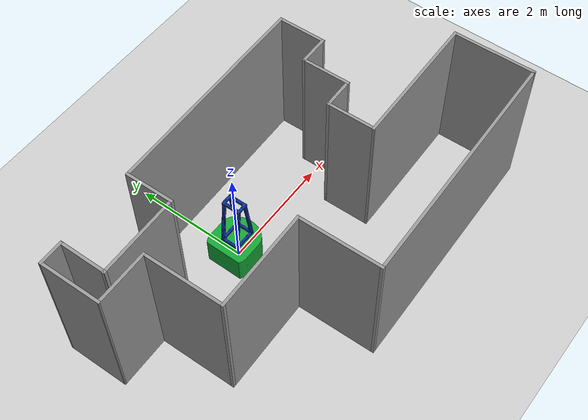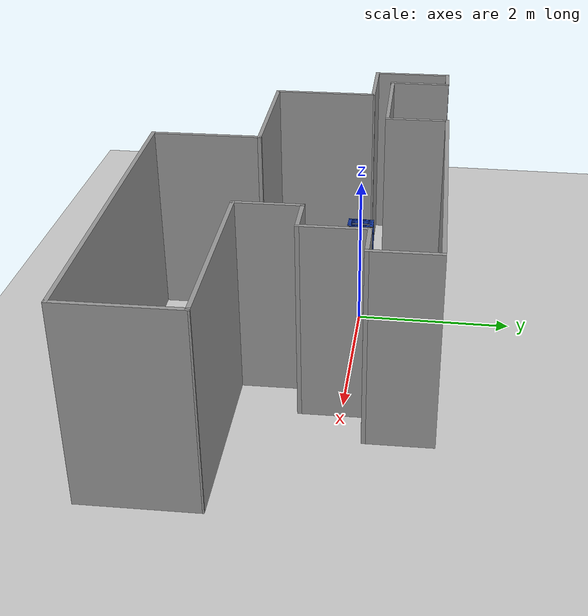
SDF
<sdf version="1.4">
 <world name="default">
  <light name="sun" type="directional">
   <pose>0 0 10 0 -0 0</pose>
   <diffuse>0.8 0.8 0.8 1</diffuse>
   <specular>0.2 0.2 0.2 1</specular>
   <attenuation>
    <range>1000</range>
    <constant>0.9</constant>
    <linear>0.01</linear>
    <quadratic>0.001</quadratic>
   </attenuation>
   <direction>-0.5 0.1 -0.9</direction>
  </light>
  <model name="ground_plane">
   <static>1</static>
   <link name="link">
    <collision name="collision">
     <geometry><plane><normal>0 0 1</normal><size>100 100</size></plane></geometry>
     <surface><friction><ode><mu>100</mu><mu2>50</mu2></ode></friction></surface>
    </collision>
    <visual name="visual">
     <cast_shadows>0</cast_shadows>
     <geometry><plane><normal>0 0 1</normal><size>100 100</size></plane></geometry>
     <material>
      <script><uri>file://media/materials/scripts/gazebo.material</uri><name>Gazebo/Grey</name></script>
     </material>
    </visual>
    <velocity_decay><linear>0</linear><angular>0</angular></velocity_decay>
   </link>
  </model>
  <physics type="ode">
   <max_step_size>0.001</max_step_size>
   <real_time_factor>1</real_time_factor>
   <real_time_update_rate>1000</real_time_update_rate>
   <gravity>0 0 -9.8</gravity>
  </physics>
  <scene><ambient>0.4 0.4 0.4 1</ambient><background>0.7 0.7 0.7 1</background><shadows>1</shadows></scene>
  <spherical_coordinates>
   <surface_model>EARTH_WGS84</surface_model>
   <latitude_deg>0</latitude_deg>
   <longitude_deg>0</longitude_deg>
   <elevation>0</elevation>
   <heading_deg>0</heading_deg>
  </spherical_coordinates>
  <model name="mild">
   <link name="base_link">
    <inertial>
     <mass>5.67</mass>
     <inertia><ixx>0.0</ixx><iyy>0.0</iyy><izz>0.0</izz><ixy>0</ixy><ixz>0</ixz><iyz>0</iyz></inertia>
    </inertial>
    <collision name="collision">
     <geometry><cylinder><radius>0.21</radius><length>0.485</length></cylinder></geometry>
    </collision>
    <collision name="castor_collision">
     <pose>-0.2 0 -0.12 0 -0 0</pose>
     <geometry><sphere><radius>0.04</radius></sphere></geometry>
     <surface><friction><ode><mu>0</mu><mu2>0</mu2><slip1>1</slip1><slip2>1</slip2></ode></friction></surface>
    </collision>
    <visual name="visual">
     <pose>0 0 -0.2 0 0 -1.5708</pose>
     <geometry><mesh><uri>model://mild/meshes/mild.dae</uri></mesh></geometry>
    </visual>
    <sensor name="laser" type="ray">
     <pose>0.22 0 -0.22 0 -0 0</pose>
     <visualize>1</visualize>
     <ray>
      <scan>
       <horizontal>
        <samples>180</samples>
        <resolution>1</resolution>
        <min_angle>-1.5708</min_angle>
        <max_angle>1.5708</max_angle>
       </horizontal>
      </scan>
      <range><min>0.08</min><max>10</max><resolution>0.01</resolution></range>
     </ray>
     <plugin name="laser_controller" filename="libgazebo_ros_laser.so">
      <gaussianNoise>0.005</gaussianNoise>
      <alwaysOn>1</alwaysOn>
      <updateRate>20</updateRate>
      <topicName>scan</topicName>
      <frameName>base_laser</frameName>
     </plugin>
     <update_rate>20</update_rate>
    </sensor>
    <velocity_decay><linear>0</linear><angular>0</angular></velocity_decay>
   </link>
   <pose>-0 -3e-06 0.2425 0 -0 0</pose>
   <static>0</static>
  </model>
  <model name="room_experiments_manual_rearranged_pascal">
   <pose>0.632278 -0.817021 0 0 -0 0.019156</pose>
   <link name="Wall_0">
    <collision name="Wall_0_Collision">
     <geometry><box><size>0.433475 0.05 2.5</size></box></geometry>
     <pose>0 0 1.25 0 -0 0</pose>
    </collision>
    <visual name="Wall_0_Visual">
     <pose>0 0 1.25 0 -0 0</pose>
     <geometry><box><size>0.433475 0.05 2.5</size></box></geometry>
     <material>
      <script><uri>file://media/materials/scripts/gazebo.material</uri><name>Gazebo/Grey</name></script>
      <ambient>1 1 1 1</ambient>
     </material>
    </visual>
    <pose>-3.19042 1.86759 0 0 -0 0</pose>
    <velocity_decay><linear>0</linear><angular>0</angular></velocity_decay>
   </link>
   <link name="Wall_1">
    <collision name="Wall_1_Collision">
     <geometry><box><size>0.828202 0.05 2.5</size></box></geometry>
     <pose>0 0 1.25 0 -0 0</pose>
    </collision>
    <visual name="Wall_1_Visual">
     <pose>0 0 1.25 0 -0 0</pose>
     <geometry><box><size>0.828202 0.05 2.5</size></box></geometry>
     <material>
      <script><uri>file://media/materials/scripts/gazebo.material</uri><name>Gazebo/Grey</name></script>
      <ambient>1 1 1 1</ambient>
     </material>
    </visual>
    <pose>-2.99587 1.47352 0 0 0 -1.57635</pose>
    <velocity_decay><linear>0</linear><angular>0</angular></velocity_decay>
   </link>
   <link name="Wall_10">
    <collision name="Wall_10_Collision">
     <geometry><box><size>2.35142 0.05 2.5</size></box></geometry>
     <pose>0 0 1.25 0 -0 0</pose>
    </collision>
    <visual name="Wall_10_Visual">
     <pose>0 0 1.25 0 -0 0</pose>
     <geometry><box><size>2.35142 0.05 2.5</size></box></geometry>
     <material>
      <script><uri>file://media/materials/scripts/gazebo.material</uri><name>Gazebo/Grey</name></script>
      <ambient>1 1 1 1</ambient>
     </material>
    </visual>
    <pose>2.23199 -0.501989 0 0 0 -0.000803</pose>
    <velocity_decay><linear>0</linear><angular>0</angular></velocity_decay>
   </link>
   <link name="Wall_11">
    <collision name="Wall_11_Collision">
     <geometry><box><size>1.42793 0.05 2.5</size></box></geometry>
     <pose>0 0 1.25 0 -0 0</pose>
    </collision>
    <visual name="Wall_11_Visual">
     <pose>0 0 1.25 0 -0 0</pose>
     <geometry><box><size>1.42793 0.05 2.5</size></box></geometry>
     <material>
      <script><uri>file://media/materials/scripts/gazebo.material</uri><name>Gazebo/Grey</name></script>
      <ambient>1 1 1 1</ambient>
     </material>
    </visual>
    <pose>3.3827 -1.19188 0 0 0 -1.5708</pose>
    <velocity_decay><linear>0</linear><angular>0</angular></velocity_decay>
   </link>
   <link name="Wall_12">
    <collision name="Wall_12_Collision">
     <geometry><box><size>4.24095 0.05 2.5</size></box></geometry>
     <pose>0 0 1.25 0 -0 0</pose>
    </collision>
    <visual name="Wall_12_Visual">
     <pose>0 0 1.25 0 -0 0</pose>
     <geometry><box><size>4.24095 0.05 2.5</size></box></geometry>
     <material>
      <script><uri>file://media/materials/scripts/gazebo.material</uri><name>Gazebo/Grey</name></script>
      <ambient>1 1 1 1</ambient>
     </material>
    </visual>
    <pose>1.28722 -1.88084 0 0 -0 3.14159</pose>
    <velocity_decay><linear>0</linear><angular>0</angular></velocity_decay>
   </link>
   <link name="Wall_13">
    <collision name="Wall_13_Collision">
     <geometry><box><size>1.43365 0.05 2.5</size></box></geometry>
     <pose>0 0 1.25 0 -0 0</pose>
    </collision>
    <visual name="Wall_13_Visual">
     <pose>0 0 1.25 0 -0 0</pose>
     <geometry><box><size>1.43365 0.05 2.5</size></box></geometry>
     <material>
      <script><uri>file://media/materials/scripts/gazebo.material</uri><name>Gazebo/Grey</name></script>
      <ambient>1 1 1 1</ambient>
     </material>
    </visual>
    <pose>-0.808255 -1.18902 0 0 -0 1.5708</pose>
    <velocity_decay><linear>0</linear><angular>0</angular></velocity_decay>
   </link>
   <link name="Wall_14">
    <collision name="Wall_14_Collision">
     <geometry><box><size>1.72525 0.05 2.5</size></box></geometry>
     <pose>0 0 1.25 0 -0 0</pose>
    </collision>
    <visual name="Wall_14_Visual">
     <pose>0 0 1.25 0 -0 0</pose>
     <geometry><box><size>1.72525 0.05 2.5</size></box></geometry>
     <material>
      <script><uri>file://media/materials/scripts/gazebo.material</uri><name>Gazebo/Grey</name></script>
      <ambient>1 1 1 1</ambient>
     </material>
    </visual>
    <pose>-1.64587 -0.497195 0 0 -0 3.14159</pose>
    <velocity_decay><linear>0</linear><angular>0</angular></velocity_decay>
   </link>
   <link name="Wall_15">
    <collision name="Wall_15_Collision">
     <geometry><box><size>1.3904 0.05 2.5</size></box></geometry>
     <pose>0 0 1.25 0 -0 0</pose>
    </collision>
    <visual name="Wall_15_Visual">
     <pose>0 0 1.25 0 -0 0</pose>
     <geometry><box><size>1.3904 0.05 2.5</size></box></geometry>
     <material>
      <script><uri>file://media/materials/scripts/gazebo.material</uri><name>Gazebo/Grey</name></script>
      <ambient>1 1 1 1</ambient>
     </material>
    </visual>
    <pose>-2.48349 0.173002 0 0 -0 1.5708</pose>
    <velocity_decay><linear>0</linear><angular>0</angular></velocity_decay>
   </link>
   <link name="Wall_16">
    <collision name="Wall_16_Collision">
     <geometry><box><size>0.949155 0.05 2.5</size></box></geometry>
     <pose>0 0 1.25 0 -0 0</pose>
    </collision>
    <visual name="Wall_16_Visual">
     <pose>0 0 1.25 0 -0 0</pose>
     <geometry><box><size>0.949155 0.05 2.5</size></box></geometry>
     <material>
      <script><uri>file://media/materials/scripts/gazebo.material</uri><name>Gazebo/Grey</name></script>
      <ambient>1 1 1 1</ambient>
     </material>
    </visual>
    <pose>-2.93307 0.844626 0 0 -0 3.13842</pose>
    <velocity_decay><linear>0</linear><angular>0</angular></velocity_decay>
   </link>
   <link name="Wall_17">
    <collision name="Wall_17_Collision">
     <geometry><box><size>1.07153 0.05 2.5</size></box></geometry>
     <pose>0 0 1.25 0 -0 0</pose>
    </collision>
    <visual name="Wall_17_Visual">
     <pose>0 0 1.25 0 -0 0</pose>
     <geometry><box><size>1.07153 0.05 2.5</size></box></geometry>
     <material>
      <script><uri>file://media/materials/scripts/gazebo.material</uri><name>Gazebo/Grey</name></script>
      <ambient>1 1 1 1</ambient>
     </material>
    </visual>
    <pose>-3.3824 1.35682 0 0 -0 1.57032</pose>
    <velocity_decay><linear>0</linear><angular>0</angular></velocity_decay>
   </link>
   <link name="Wall_2">
    <collision name="Wall_2_Collision">
     <geometry><box><size>1.44339 0.05 2.5</size></box></geometry>
     <pose>0 0 1.25 0 -0 0</pose>
    </collision>
    <visual name="Wall_2_Visual">
     <pose>0 0 1.25 0 -0 0</pose>
     <geometry><box><size>1.44339 0.05 2.5</size></box></geometry>
     <material>
      <script><uri>file://media/materials/scripts/gazebo.material</uri><name>Gazebo/Grey</name></script>
      <ambient>1 1 1 1</ambient>
     </material>
    </visual>
    <pose>-2.30631 1.08939 0 0 -0 0</pose>
    <velocity_decay><linear>0</linear><angular>0</angular></velocity_decay>
   </link>
   <link name="Wall_3">
    <collision name="Wall_3_Collision">
     <geometry><box><size>0.841738 0.05 2.5</size></box></geometry>
     <pose>0 0 1.25 0 -0 0</pose>
    </collision>
    <visual name="Wall_3_Visual">
     <pose>0 0 1.25 0 -0 0</pose>
     <geometry><box><size>0.841738 0.05 2.5</size></box></geometry>
     <material>
      <script><uri>file://media/materials/scripts/gazebo.material</uri><name>Gazebo/Grey</name></script>
      <ambient>1 1 1 1</ambient>
     </material>
    </visual>
    <pose>-1.60961 1.48497 0 0 -0 1.5708</pose>
    <velocity_decay><linear>0</linear><angular>0</angular></velocity_decay>
   </link>
   <link name="Wall_4">
    <collision name="Wall_4_Collision">
     <geometry><box><size>3.72046 0.05 2.5</size></box></geometry>
     <pose>0 0 1.25 0 -0 0</pose>
    </collision>
    <visual name="Wall_4_Visual">
     <pose>0 0 1.25 0 -0 0</pose>
     <geometry><box><size>3.72046 0.05 2.5</size></box></geometry>
     <material>
      <script><uri>file://media/materials/scripts/gazebo.material</uri><name>Gazebo/Grey</name></script>
      <ambient>1 1 1 1</ambient>
     </material>
    </visual>
    <pose>0.225621 1.88055 0 0 -0 0</pose>
    <velocity_decay><linear>0</linear><angular>0</angular></velocity_decay>
   </link>
   <link name="Wall_5">
    <collision name="Wall_5_Collision">
     <geometry><box><size>0.845776 0.05 2.5</size></box></geometry>
     <pose>0 0 1.25 0 -0 0</pose>
    </collision>
    <visual name="Wall_5_Visual">
     <pose>0 0 1.25 0 -0 0</pose>
     <geometry><box><size>0.845776 0.05 2.5</size></box></geometry>
     <material>
      <script><uri>file://media/materials/scripts/gazebo.material</uri><name>Gazebo/Grey</name></script>
      <ambient>1 1 1 1</ambient>
     </material>
    </visual>
    <pose>2.06085 1.48281 0 0 0 -1.5708</pose>
    <velocity_decay><linear>0</linear><angular>0</angular></velocity_decay>
   </link>
   <link name="Wall_6">
    <collision name="Wall_6_Collision">
     <geometry><box><size>0.532411 0.05 2.5</size></box></geometry>
     <pose>0 0 1.25 0 -0 0</pose>
    </collision>
    <visual name="Wall_6_Visual">
     <pose>0 0 1.25 0 -0 0</pose>
     <geometry><box><size>0.532411 0.05 2.5</size></box></geometry>
     <material>
      <script><uri>file://media/materials/scripts/gazebo.material</uri><name>Gazebo/Grey</name></script>
      <ambient>1 1 1 1</ambient>
     </material>
    </visual>
    <pose>1.81966 1.085 0 0 0 -3.1413</pose>
    <velocity_decay><linear>0</linear><angular>0</angular></velocity_decay>
   </link>
   <link name="Wall_7">
    <collision name="Wall_7_Collision">
     <geometry><box><size>0.840511 0.05 2.5</size></box></geometry>
     <pose>0 0 1.25 0 -0 0</pose>
    </collision>
    <visual name="Wall_7_Visual">
     <pose>0 0 1.25 0 -0 0</pose>
     <geometry><box><size>0.840511 0.05 2.5</size></box></geometry>
     <material>
      <script><uri>file://media/materials/scripts/gazebo.material</uri><name>Gazebo/Grey</name></script>
      <ambient>1 1 1 1</ambient>
     </material>
    </visual>
    <pose>1.57846 0.689673 0 0 0 -1.5708</pose>
    <velocity_decay><linear>0</linear><angular>0</angular></velocity_decay>
   </link>
   <link name="Wall_8">
    <collision name="Wall_8_Collision">
     <geometry><box><size>0.547177 0.05 2.5</size></box></geometry>
     <pose>0 0 1.25 0 -0 0</pose>
    </collision>
    <visual name="Wall_8_Visual">
     <pose>0 0 1.25 0 -0 0</pose>
     <geometry><box><size>0.547177 0.05 2.5</size></box></geometry>
     <material>
      <script><uri>file://media/materials/scripts/gazebo.material</uri><name>Gazebo/Grey</name></script>
      <ambient>1 1 1 1</ambient>
     </material>
    </visual>
    <pose>1.32988 0.294418 0 0 -0 3.14159</pose>
    <velocity_decay><linear>0</linear><angular>0</angular></velocity_decay>
   </link>
   <link name="Wall_9">
    <collision name="Wall_9_Collision">
     <geometry><box><size>0.845483 0.05 2.5</size></box></geometry>
     <pose>0 0 1.25 0 -0 0</pose>
    </collision>
    <visual name="Wall_9_Visual">
     <pose>0 0 1.25 0 -0 0</pose>
     <geometry><box><size>0.845483 0.05 2.5</size></box></geometry>
     <material>
      <script><uri>file://media/materials/scripts/gazebo.material</uri><name>Gazebo/Grey</name></script>
      <ambient>1 1 1 1</ambient>
     </material>
    </visual>
    <pose>1.08129 -0.103324 0 0 0 -1.5708</pose>
    <velocity_decay><linear>0</linear><angular>0</angular></velocity_decay>
   </link>
   <static>1</static>
  </model>
 </world>
</sdf>
